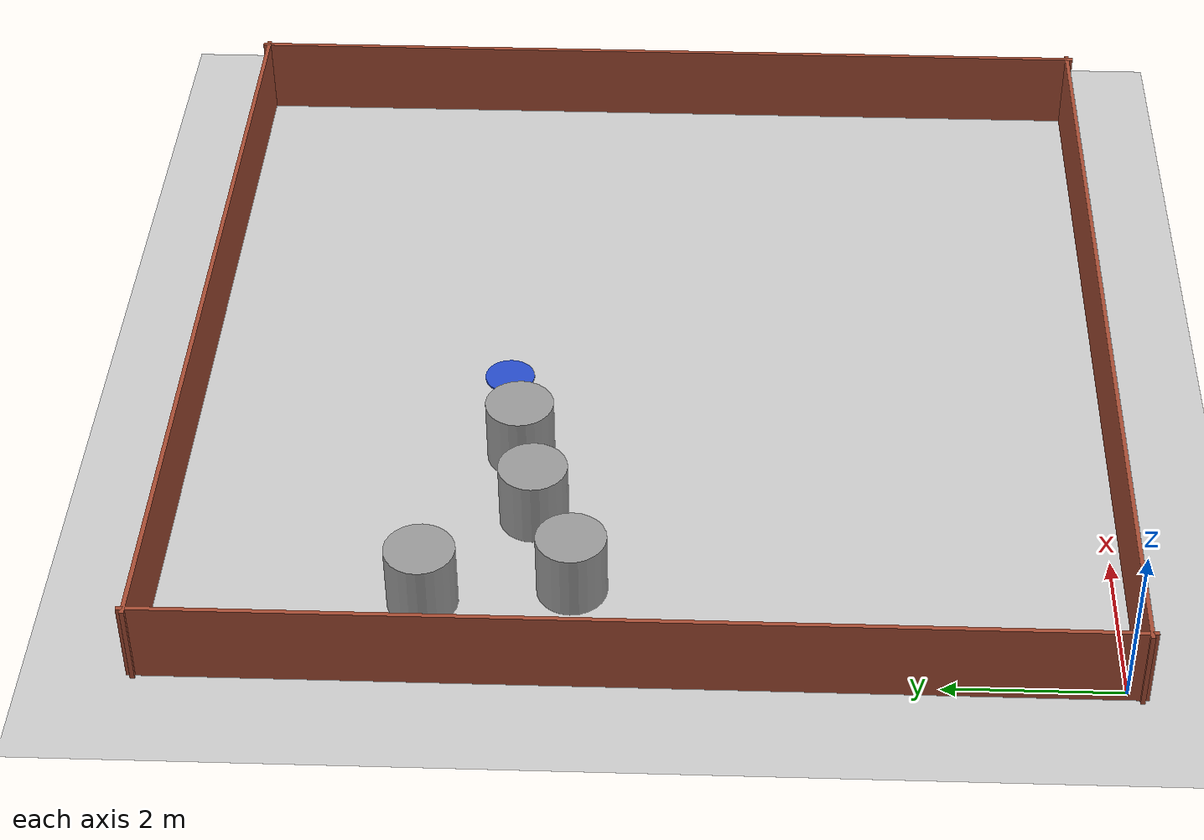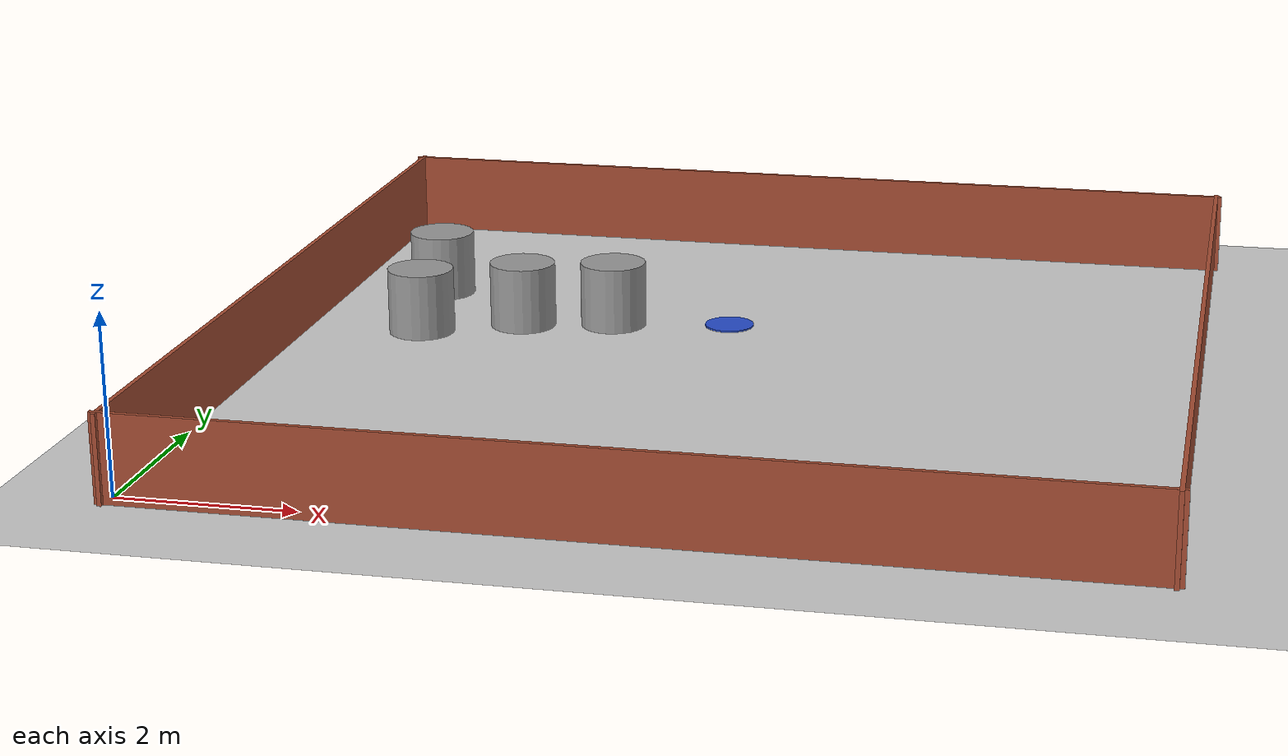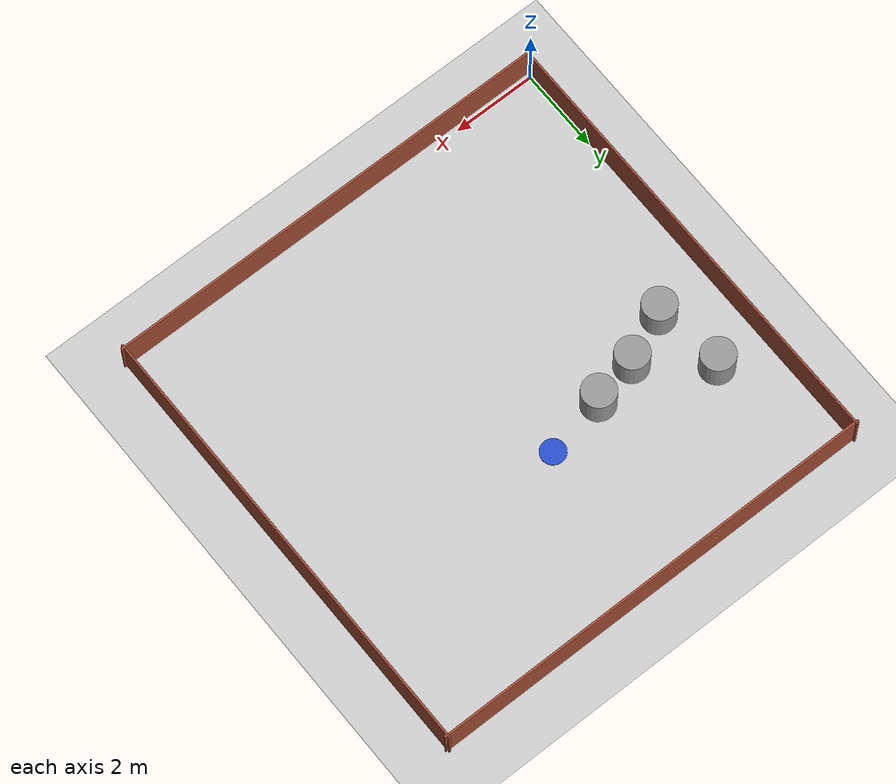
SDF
<sdf version="1.7">
 <world name="default">
  <model name="ground_plane">
   <static>1</static>
   <link name="link">
    <collision name="collision">
     <geometry><plane><normal>0 0 1</normal><size>100 100</size></plane></geometry>
     <surface>
      <contact><collide_bitmask>65535</collide_bitmask></contact>
      <friction><ode><mu>100</mu><mu2>50</mu2></ode></friction>
     </surface>
    </collision>
    <visual name="visual">
     <cast_shadows>0</cast_shadows>
     <geometry><plane><normal>0 0 1</normal><size>100 100</size></plane></geometry>
     <material>
      <script><uri>file://media/materials/scripts/gazebo.material</uri><name>Gazebo/Grey</name></script>
     </material>
    </visual>
   </link>
  </model>
  <model name="11X11-EmptyWorld">
   <link name="Wall_0">
    <pose>0 5.425 0 0 -0 0</pose>
    <inertial>
     <mass>1</mass>
     <inertia><ixx>1</ixx><ixy>0</ixy><ixz>0</ixz><iyy>1</iyy><iyz>0</iyz><izz>1</izz></inertia>
    </inertial>
    <visual name="Wall_0_Visual">
     <pose>0 0 1.25 0 -0 0</pose>
     <geometry><box><size>11 0.05 1</size></box></geometry>
     <material>
      <script><uri>file://media/materials/scripts/gazebo.material</uri><name>Gazebo/Bricks</name></script>
      <ambient>1 1 1 1</ambient>
      <shader type="pixel"><normal_map>__default__</normal_map></shader>
      <diffuse>1 1 1 1</diffuse>
      <specular>0.2 0.2 0.2 1</specular>
      <emissive>0 0 0 1</emissive>
     </material>
     <meta><layer>0</layer></meta>
    </visual>
    <collision name="Wall_0_Collision">
     <pose>0 0 1.25 0 -0 0</pose>
     <geometry><box><size>11 0.15 2.5</size></box></geometry>
     <surface>
      <friction>
       <ode><mu>1</mu><mu2>1</mu2><fdir1>0 0 0</fdir1><slip1>0</slip1><slip2>0</slip2></ode>
       <torsional>
        <coefficient>1</coefficient>
        <patch_radius>0</patch_radius>
        <surface_radius>0</surface_radius>
        <use_patch_radius>1</use_patch_radius>
        <ode><slip>0</slip></ode>
       </torsional>
      </friction>
      <bounce><restitution_coefficient>0</restitution_coefficient><threshold>1e+06</threshold></bounce>
      <contact>
       <collide_without_contact>0</collide_without_contact>
       <collide_without_contact_bitmask>1</collide_without_contact_bitmask>
       <collide_bitmask>1</collide_bitmask>
       <ode>
        <soft_cfm>0</soft_cfm>
        <soft_erp>0.2</soft_erp>
        <kp>1e+13</kp>
        <kd>1</kd>
        <max_vel>0.01</max_vel>
        <min_depth>0</min_depth>
       </ode>
       <bullet>
        <split_impulse>1</split_impulse>
        <split_impulse_penetration_threshold>-0.01</split_impulse_penetration_threshold>
        <soft_cfm>0</soft_cfm>
        <soft_erp>0.2</soft_erp>
        <kp>1e+13</kp>
        <kd>1</kd>
       </bullet>
      </contact>
     </surface>
    </collision>
   </link>
   <link name="Wall_5">
    <pose>5.425 0 0 0 0 -1.5708</pose>
    <inertial>
     <mass>1</mass>
     <inertia><ixx>1</ixx><ixy>0</ixy><ixz>0</ixz><iyy>1</iyy><iyz>0</iyz><izz>1</izz></inertia>
    </inertial>
    <visual name="Wall_5_Visual">
     <pose>0 0 1.25 0 -0 0</pose>
     <geometry><box><size>11 0.05 1</size></box></geometry>
     <material>
      <script><uri>file://media/materials/scripts/gazebo.material</uri><name>Gazebo/Bricks</name></script>
      <ambient>1 1 1 1</ambient>
      <shader type="pixel"><normal_map>__default__</normal_map></shader>
      <diffuse>1 1 1 1</diffuse>
      <specular>0.2 0.2 0.2 1</specular>
      <emissive>0 0 0 1</emissive>
     </material>
     <meta><layer>0</layer></meta>
    </visual>
    <collision name="Wall_5_Collision">
     <pose>0 0 1.25 0 -0 0</pose>
     <geometry><box><size>11 0.15 2.5</size></box></geometry>
     <surface>
      <friction>
       <ode><mu>1</mu><mu2>1</mu2><fdir1>0 0 0</fdir1><slip1>0</slip1><slip2>0</slip2></ode>
       <torsional>
        <coefficient>1</coefficient>
        <patch_radius>0</patch_radius>
        <surface_radius>0</surface_radius>
        <use_patch_radius>1</use_patch_radius>
        <ode><slip>0</slip></ode>
       </torsional>
      </friction>
      <bounce><restitution_coefficient>0</restitution_coefficient><threshold>1e+06</threshold></bounce>
      <contact>
       <collide_without_contact>0</collide_without_contact>
       <collide_without_contact_bitmask>1</collide_without_contact_bitmask>
       <collide_bitmask>1</collide_bitmask>
       <ode>
        <soft_cfm>0</soft_cfm>
        <soft_erp>0.2</soft_erp>
        <kp>1e+13</kp>
        <kd>1</kd>
        <max_vel>0.01</max_vel>
        <min_depth>0</min_depth>
       </ode>
       <bullet>
        <split_impulse>1</split_impulse>
        <split_impulse_penetration_threshold>-0.01</split_impulse_penetration_threshold>
        <soft_cfm>0</soft_cfm>
        <soft_erp>0.2</soft_erp>
        <kp>1e+13</kp>
        <kd>1</kd>
       </bullet>
      </contact>
     </surface>
    </collision>
   </link>
   <link name="Wall_8">
    <pose>0 -5.425 0 0 -0 3.14159</pose>
    <inertial>
     <mass>1</mass>
     <inertia><ixx>1</ixx><ixy>0</ixy><ixz>0</ixz><iyy>1</iyy><iyz>0</iyz><izz>1</izz></inertia>
    </inertial>
    <visual name="Wall_8_Visual">
     <pose>0 0 1.25 0 -0 0</pose>
     <geometry><box><size>11 0.05 1</size></box></geometry>
     <material>
      <script><uri>file://media/materials/scripts/gazebo.material</uri><name>Gazebo/Bricks</name></script>
      <ambient>1 1 1 1</ambient>
      <shader type="pixel"><normal_map>__default__</normal_map></shader>
      <diffuse>1 1 1 1</diffuse>
      <specular>0.2 0.2 0.2 1</specular>
      <emissive>0 0 0 1</emissive>
     </material>
     <meta><layer>0</layer></meta>
    </visual>
    <collision name="Wall_8_Collision">
     <pose>0 0 1.25 0 -0 0</pose>
     <geometry><box><size>11 0.5 1</size></box></geometry>
     <surface>
      <friction>
       <ode><mu>1</mu><mu2>1</mu2><fdir1>0 0 0</fdir1><slip1>0</slip1><slip2>0</slip2></ode>
       <torsional>
        <coefficient>1</coefficient>
        <patch_radius>0</patch_radius>
        <surface_radius>0</surface_radius>
        <use_patch_radius>1</use_patch_radius>
        <ode><slip>0</slip></ode>
       </torsional>
      </friction>
      <bounce><restitution_coefficient>0</restitution_coefficient><threshold>1e+06</threshold></bounce>
      <contact>
       <collide_without_contact>0</collide_without_contact>
       <collide_without_contact_bitmask>1</collide_without_contact_bitmask>
       <collide_bitmask>1</collide_bitmask>
       <ode>
        <soft_cfm>0</soft_cfm>
        <soft_erp>0.2</soft_erp>
        <kp>1e+13</kp>
        <kd>1</kd>
        <max_vel>0.01</max_vel>
        <min_depth>0</min_depth>
       </ode>
       <bullet>
        <split_impulse>1</split_impulse>
        <split_impulse_penetration_threshold>-0.01</split_impulse_penetration_threshold>
        <soft_cfm>0</soft_cfm>
        <soft_erp>0.2</soft_erp>
        <kp>1e+13</kp>
        <kd>1</kd>
       </bullet>
      </contact>
     </surface>
    </collision>
   </link>
   <link name="Wall_9">
    <pose>-5.425 0 0 0 -0 1.5708</pose>
    <inertial>
     <mass>1</mass>
     <inertia><ixx>1</ixx><ixy>0</ixy><ixz>0</ixz><iyy>1</iyy><iyz>0</iyz><izz>1</izz></inertia>
    </inertial>
    <visual name="Wall_9_Visual">
     <pose>0 0 1.25 0 -0 0</pose>
     <geometry><box><size>11 0.05 1</size></box></geometry>
     <material>
      <script><uri>file://media/materials/scripts/gazebo.material</uri><name>Gazebo/Bricks</name></script>
      <ambient>1 1 1 1</ambient>
      <shader type="pixel"><normal_map>__default__</normal_map></shader>
      <diffuse>1 1 1 1</diffuse>
      <specular>0.2 0.2 0.2 1</specular>
      <emissive>0 0 0 1</emissive>
     </material>
     <meta><layer>0</layer></meta>
    </visual>
    <collision name="Wall_9_Collision">
     <pose>0 0 1.25 0 -0 0</pose>
     <geometry><box><size>11 0.15 2.5</size></box></geometry>
     <surface>
      <friction>
       <ode><mu>1</mu><mu2>1</mu2><fdir1>0 0 0</fdir1><slip1>0</slip1><slip2>0</slip2></ode>
       <torsional>
        <coefficient>1</coefficient>
        <patch_radius>0</patch_radius>
        <surface_radius>0</surface_radius>
        <use_patch_radius>1</use_patch_radius>
        <ode><slip>0</slip></ode>
       </torsional>
      </friction>
      <bounce><restitution_coefficient>0</restitution_coefficient><threshold>1e+06</threshold></bounce>
      <contact>
       <collide_without_contact>0</collide_without_contact>
       <collide_without_contact_bitmask>1</collide_without_contact_bitmask>
       <collide_bitmask>1</collide_bitmask>
       <ode>
        <soft_cfm>0</soft_cfm>
        <soft_erp>0.2</soft_erp>
        <kp>1e+13</kp>
        <kd>1</kd>
        <max_vel>0.01</max_vel>
        <min_depth>0</min_depth>
       </ode>
       <bullet>
        <split_impulse>1</split_impulse>
        <split_impulse_penetration_threshold>-0.01</split_impulse_penetration_threshold>
        <soft_cfm>0</soft_cfm>
        <soft_erp>0.2</soft_erp>
        <kp>1e+13</kp>
        <kd>1</kd>
       </bullet>
      </contact>
     </surface>
    </collision>
   </link>
   <static>1</static>
   <pose>5.37317 5.2717 -0.763043 0 -0 0</pose>
  </model>
  <model name="terminal">
   <link name="link_1">
    <inertial>
     <mass>1</mass>
     <inertia><ixx>0.145833</ixx><ixy>0</ixy><ixz>0</ixz><iyy>0.145833</iyy><iyz>0</iyz><izz>0.125</izz></inertia>
    </inertial>
    <pose>0 -0 -0.49 0 -0 0</pose>
    <visual name="visual">
     <geometry><cylinder><radius>0.3</radius><length>0.02</length></cylinder></geometry>
     <material>
      <lighting>1</lighting>
      <script><uri>file://media/materials/scripts/gazebo.material</uri><name>Gazebo/Blue</name></script>
      <shader type="pixel"><normal_map>__default__</normal_map></shader>
      <ambient>0.3 0.3 0.3 1</ambient>
      <diffuse>0 1 0 1</diffuse>
      <specular>0.01 0.01 0.01 1</specular>
      <emissive>0 0 0 1</emissive>
     </material>
    </visual>
    <collision name="collision">
     <geometry><cylinder><radius>0.3</radius><length>0.02</length></cylinder></geometry>
     <surface>
      <friction>
       <ode><mu>1</mu><mu2>1</mu2><fdir1>0 0 0</fdir1><slip1>0</slip1><slip2>0</slip2></ode>
       <torsional>
        <coefficient>1</coefficient>
        <patch_radius>0</patch_radius>
        <surface_radius>0</surface_radius>
        <use_patch_radius>1</use_patch_radius>
        <ode><slip>0</slip></ode>
       </torsional>
      </friction>
      <bounce><restitution_coefficient>0</restitution_coefficient><threshold>1e+06</threshold></bounce>
      <contact>
       <collide_without_contact>0</collide_without_contact>
       <collide_without_contact_bitmask>1</collide_without_contact_bitmask>
       <collide_bitmask>1</collide_bitmask>
       <ode>
        <soft_cfm>0</soft_cfm>
        <soft_erp>0.2</soft_erp>
        <kp>1e+13</kp>
        <kd>1</kd>
        <max_vel>0.01</max_vel>
        <min_depth>0</min_depth>
       </ode>
       <bullet>
        <split_impulse>1</split_impulse>
        <split_impulse_penetration_threshold>-0.01</split_impulse_penetration_threshold>
        <soft_cfm>0</soft_cfm>
        <soft_erp>0.2</soft_erp>
        <kp>1e+13</kp>
        <kd>1</kd>
       </bullet>
      </contact>
     </surface>
    </collision>
   </link>
   <static>0</static>
   <pose>5.03505 6.99933 0.499991 0 -0 0</pose>
  </model>
  <model name="obs0">
   <link name="link_0">
    <inertial>
     <mass>1</mass>
     <inertia><ixx>0.145833</ixx><ixy>0</ixy><ixz>0</ixz><iyy>0.145833</iyy><iyz>0</iyz><izz>0.125</izz></inertia>
    </inertial>
    <visual name="visual">
     <geometry><cylinder><radius>0.4</radius><length>0.8</length></cylinder></geometry>
     <material>
      <lighting>1</lighting>
      <script><uri>file://media/materials/scripts/gazebo.material</uri><name>Gazebo/Grey</name></script>
      <shader type="pixel"><normal_map>__default__</normal_map></shader>
      <ambient>0.3 0.3 0.3 1</ambient>
      <diffuse>0.7 0.7 0.7 1</diffuse>
      <specular>0.01 0.01 0.01 1</specular>
      <emissive>0 0 0 1</emissive>
     </material>
    </visual>
    <collision name="collision">
     <geometry><cylinder><radius>0.4</radius><length>0.8</length></cylinder></geometry>
     <surface>
      <friction>
       <ode><mu>1</mu><mu2>1</mu2><fdir1>0 0 0</fdir1><slip1>0</slip1><slip2>0</slip2></ode>
       <torsional>
        <coefficient>1</coefficient>
        <patch_radius>0</patch_radius>
        <surface_radius>0</surface_radius>
        <use_patch_radius>1</use_patch_radius>
        <ode><slip>0</slip></ode>
       </torsional>
      </friction>
      <bounce><restitution_coefficient>0</restitution_coefficient><threshold>1e+06</threshold></bounce>
      <contact>
       <collide_without_contact>0</collide_without_contact>
       <collide_without_contact_bitmask>1</collide_without_contact_bitmask>
       <collide_bitmask>1</collide_bitmask>
       <ode>
        <soft_cfm>0</soft_cfm>
        <soft_erp>0.2</soft_erp>
        <kp>1e+13</kp>
        <kd>1</kd>
        <max_vel>0.01</max_vel>
        <min_depth>0</min_depth>
       </ode>
       <bullet>
        <split_impulse>1</split_impulse>
        <split_impulse_penetration_threshold>-0.01</split_impulse_penetration_threshold>
        <soft_cfm>0</soft_cfm>
        <soft_erp>0.2</soft_erp>
        <kp>1e+13</kp>
        <kd>1</kd>
       </bullet>
      </contact>
     </surface>
    </collision>
   </link>
   <static>0</static>
   <pose>1.14707 7.68416 0.399991 0 -0 0</pose>
  </model>
  <model name="obs1">
   <link name="link_0">
    <inertial>
     <mass>1</mass>
     <inertia><ixx>0.145833</ixx><ixy>0</ixy><ixz>0</ixz><iyy>0.145833</iyy><iyz>0</iyz><izz>0.125</izz></inertia>
    </inertial>
    <visual name="visual">
     <geometry><cylinder><radius>0.4</radius><length>0.8</length></cylinder></geometry>
     <material>
      <lighting>1</lighting>
      <script><uri>file://media/materials/scripts/gazebo.material</uri><name>Gazebo/Grey</name></script>
      <shader type="pixel"><normal_map>__default__</normal_map></shader>
      <ambient>0.3 0.3 0.3 1</ambient>
      <diffuse>0.7 0.7 0.7 1</diffuse>
      <specular>0.01 0.01 0.01 1</specular>
      <emissive>0 0 0 1</emissive>
     </material>
    </visual>
    <collision name="collision">
     <geometry><cylinder><radius>0.4</radius><length>0.8</length></cylinder></geometry>
     <surface>
      <friction>
       <ode><mu>1</mu><mu2>1</mu2><fdir1>0 0 0</fdir1><slip1>0</slip1><slip2>0</slip2></ode>
       <torsional>
        <coefficient>1</coefficient>
        <patch_radius>0</patch_radius>
        <surface_radius>0</surface_radius>
        <use_patch_radius>1</use_patch_radius>
        <ode><slip>0</slip></ode>
       </torsional>
      </friction>
      <bounce><restitution_coefficient>0</restitution_coefficient><threshold>1e+06</threshold></bounce>
      <contact>
       <collide_without_contact>0</collide_without_contact>
       <collide_without_contact_bitmask>1</collide_without_contact_bitmask>
       <collide_bitmask>1</collide_bitmask>
       <ode>
        <soft_cfm>0</soft_cfm>
        <soft_erp>0.2</soft_erp>
        <kp>1e+13</kp>
        <kd>1</kd>
        <max_vel>0.01</max_vel>
        <min_depth>0</min_depth>
       </ode>
       <bullet>
        <split_impulse>1</split_impulse>
        <split_impulse_penetration_threshold>-0.01</split_impulse_penetration_threshold>
        <soft_cfm>0</soft_cfm>
        <soft_erp>0.2</soft_erp>
        <kp>1e+13</kp>
        <kd>1</kd>
       </bullet>
      </contact>
     </surface>
    </collision>
   </link>
   <static>0</static>
   <pose>1.38373 6.03521 0.399991 0 -0 0</pose>
  </model>
  <model name="obs7">
   <link name="link_0">
    <inertial>
     <mass>1</mass>
     <inertia><ixx>0.145833</ixx><ixy>0</ixy><ixz>0</ixz><iyy>0.145833</iyy><iyz>0</iyz><izz>0.125</izz></inertia>
    </inertial>
    <visual name="visual">
     <geometry><cylinder><radius>0.4</radius><length>0.8</length></cylinder></geometry>
     <material>
      <lighting>1</lighting>
      <script><uri>file://media/materials/scripts/gazebo.material</uri><name>Gazebo/Grey</name></script>
      <shader type="pixel"><normal_map>__default__</normal_map></shader>
      <ambient>0.3 0.3 0.3 1</ambient>
      <diffuse>0.7 0.7 0.7 1</diffuse>
      <specular>0.01 0.01 0.01 1</specular>
      <emissive>0 0 0 1</emissive>
     </material>
    </visual>
    <collision name="collision">
     <geometry><cylinder><radius>0.4</radius><length>0.8</length></cylinder></geometry>
     <surface>
      <friction>
       <ode><mu>1</mu><mu2>1</mu2><fdir1>0 0 0</fdir1><slip1>0</slip1><slip2>0</slip2></ode>
       <torsional>
        <coefficient>1</coefficient>
        <patch_radius>0</patch_radius>
        <surface_radius>0</surface_radius>
        <use_patch_radius>1</use_patch_radius>
        <ode><slip>0</slip></ode>
       </torsional>
      </friction>
      <bounce><restitution_coefficient>0</restitution_coefficient><threshold>1e+06</threshold></bounce>
      <contact>
       <collide_without_contact>0</collide_without_contact>
       <collide_without_contact_bitmask>1</collide_without_contact_bitmask>
       <collide_bitmask>1</collide_bitmask>
       <ode>
        <soft_cfm>0</soft_cfm>
        <soft_erp>0.2</soft_erp>
        <kp>1e+13</kp>
        <kd>1</kd>
        <max_vel>0.01</max_vel>
        <min_depth>0</min_depth>
       </ode>
       <bullet>
        <split_impulse>1</split_impulse>
        <split_impulse_penetration_threshold>-0.01</split_impulse_penetration_threshold>
        <soft_cfm>0</soft_cfm>
        <soft_erp>0.2</soft_erp>
        <kp>1e+13</kp>
        <kd>1</kd>
       </bullet>
      </contact>
     </surface>
    </collision>
   </link>
   <static>0</static>
   <pose>2.53198 6.53425 0.399993 3e-06 3e-06 0</pose>
  </model>
  <model name="obs3">
   <link name="link_0">
    <inertial>
     <mass>1</mass>
     <inertia><ixx>0.145833</ixx><ixy>0</ixy><ixz>0</ixz><iyy>0.145833</iyy><iyz>0</iyz><izz>0.125</izz></inertia>
    </inertial>
    <visual name="visual">
     <geometry><cylinder><radius>0.4</radius><length>0.8</length></cylinder></geometry>
     <material>
      <lighting>1</lighting>
      <script><uri>file://media/materials/scripts/gazebo.material</uri><name>Gazebo/Grey</name></script>
      <shader type="pixel"><normal_map>__default__</normal_map></shader>
      <ambient>0.3 0.3 0.3 1</ambient>
      <diffuse>0.7 0.7 0.7 1</diffuse>
      <specular>0.01 0.01 0.01 1</specular>
      <emissive>0 0 0 1</emissive>
     </material>
    </visual>
    <collision name="collision">
     <geometry><cylinder><radius>0.4</radius><length>0.8</length></cylinder></geometry>
     <surface>
      <friction>
       <ode><mu>1</mu><mu2>1</mu2><fdir1>0 0 0</fdir1><slip1>0</slip1><slip2>0</slip2></ode>
       <torsional>
        <coefficient>1</coefficient>
        <patch_radius>0</patch_radius>
        <surface_radius>0</surface_radius>
        <use_patch_radius>1</use_patch_radius>
        <ode><slip>0</slip></ode>
       </torsional>
      </friction>
      <bounce><restitution_coefficient>0</restitution_coefficient><threshold>1e+06</threshold></bounce>
      <contact>
       <collide_without_contact>0</collide_without_contact>
       <collide_without_contact_bitmask>1</collide_without_contact_bitmask>
       <collide_bitmask>1</collide_bitmask>
       <ode>
        <soft_cfm>0</soft_cfm>
        <soft_erp>0.2</soft_erp>
        <kp>1e+13</kp>
        <kd>1</kd>
        <max_vel>0.01</max_vel>
        <min_depth>0</min_depth>
       </ode>
       <bullet>
        <split_impulse>1</split_impulse>
        <split_impulse_penetration_threshold>-0.01</split_impulse_penetration_threshold>
        <soft_cfm>0</soft_cfm>
        <soft_erp>0.2</soft_erp>
        <kp>1e+13</kp>
        <kd>1</kd>
       </bullet>
      </contact>
     </surface>
    </collision>
   </link>
   <static>0</static>
   <pose>3.62176 6.76183 0.399993 3e-06 3e-06 0</pose>
  </model>
 </world>
</sdf>
